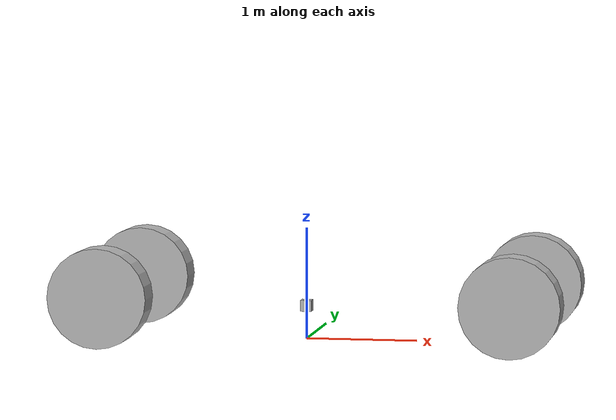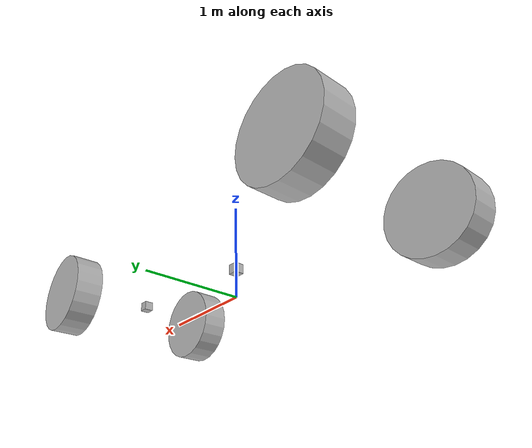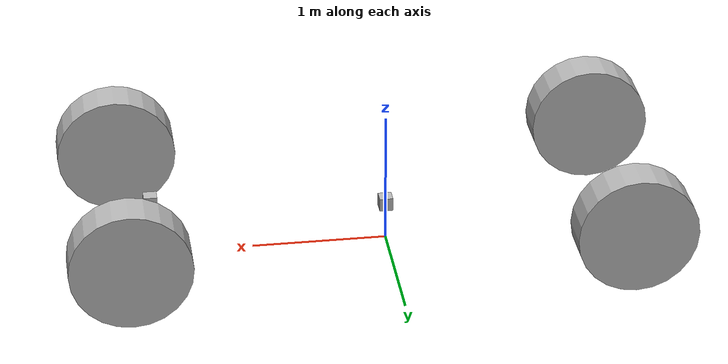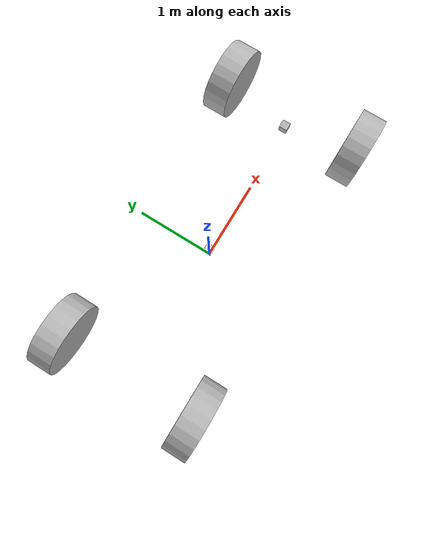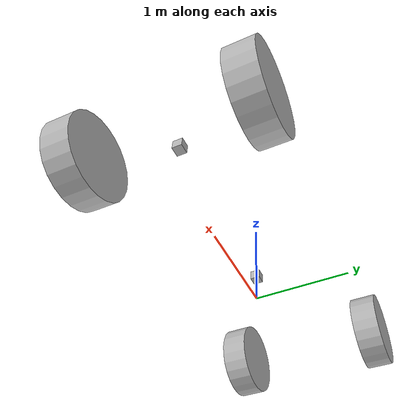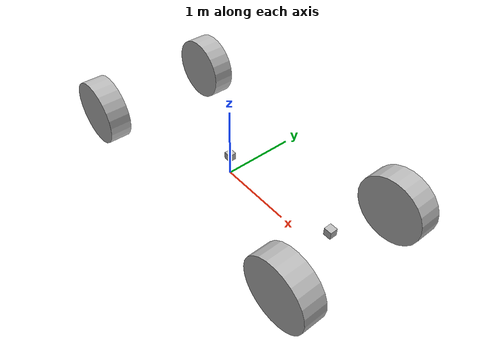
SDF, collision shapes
<!-- rosrun gazebo_ros spawn_model -model F-150 -sdf -file /home/bigb/gazebo_f150_ws/src/gazebo_f150/models/F150/model.sdf -->

<?xml version="1.0" ?>
<sdf version="1.5">
  <model name="box">
    <pose>0 0 0 0 0 0</pose>
    <static>false</static>

    <link name="chassis">
    <pose>0 0 0 0 0 0</pose>
      <inertial>
        <inertia>
          <ixx>1000</ixx>
          <ixy>0</ixy>
          <ixz>0</ixz>
          <iyy>1000</iyy>
          <iyz>0</iyz>
          <izz>1000</izz>
        </inertia>
        <mass>1000</mass>
      </inertial>
      <collision name="base_link_collision">
        <pose>0 0 0.3 0 0 0</pose>
        <geometry>
          <box>
            <size>0.1 0.1 0.1</size>
          </box>
        </geometry>
      </collision>
      <visual name="base_link_visual">
        <geometry>
          <cylinder>
            <radius>0.1</radius>
            <length>1.0</length>
          </cylinder>
        </geometry>
      </visual>
    </link>

    <link name="steering_centerlink_link">
    <pose>1.75 0 0.445 0 0 0</pose>
      <inertial>
        <inertia>
          <ixx>0.1</ixx>
          <ixy>0</ixy>
          <ixz>0</ixz>
          <iyy>0.1</iyy>
          <iyz>0</iyz>
          <izz>0.1</izz>
        </inertia>
        <mass>0.1</mass>
      </inertial>
      <collision name="collision">
        <pose>0 0 0 0 0 0</pose>
        <geometry>
            <box>
              <size>0.1 0.1 0.1</size>
            </box>
        </geometry>
      </collision>
      <visual name="visual">
        <pose>0 0 0 1.57079632679 0 0</pose>
        <geometry>
          <cylinder>
            <radius>0.01</radius>
            <length>0.5</length>
          </cylinder>
        </geometry>
      </visual>
    </link>

    <joint name="centerlink2chassis_joint" type="prismatic">
      <parent>chassis</parent>
      <child>steering_centerlink_link</child>
      <pose>0 0 0 0 0 0</pose>
      <axis>
        <xyz>0 1 0</xyz>
      </axis>
    </joint>

    <!-- Start Front Right Wheel -->
        <link name="front_right_wheel">
        <pose>1.953 -0.8665 0.445 0 0 0</pose>
          <inertial>
            <inertia>
              <ixx>2</ixx>
              <ixy>0</ixy>
              <ixz>0</ixz>
              <iyy>3.46</iyy>
              <iyz>0</iyz>
              <izz>2</izz>
            </inertia>
            <mass>35.0</mass>
          </inertial>

          <collision name="front_right_wheel_collision">
          <pose>0 0 0 1.57079633 0 0</pose>
            <geometry>
              <cylinder>
                <radius>0.445</radius>
                <length>0.297</length>
              </cylinder>
            </geometry>
            <surface>
              <friction>
                <ode>
                  <mu>0.7</mu>
                  <mu2>0.7</mu2>
                </ode>
              </friction>
            </surface>
          </collision>

          <visual name="front_right_wheel_visual">
          <pose>0 0 0 0 0 0</pose>
            <geometry>
              <mesh>
                <uri>model://F150/meshes/wheel.dae</uri>
              </mesh>
            </geometry>
          </visual>
        </link>

    <link name="right_steering_arm_link">
    <pose>1.953 -0.8665 0.445 0 0 -0.23300146</pose> <!-- Front wheel position with rotation -->
      <inertial>
        <inertia>
          <ixx>0.1</ixx>
          <ixy>0</ixy>
          <ixz>0</ixz>
          <iyy>0.1</iyy>
          <iyz>0</iyz>
          <izz>0.1</izz>
        </inertia>
        <mass>0.1</mass>
      </inertial>
      <collision name="collision">
        <pose>0 0 0 0 0 0</pose>
        <geometry>
          <cylinder>
            <radius>0.005</radius>
            <length>0.01</length>
          </cylinder>
        </geometry>
      </collision>
      <visual name="visual">
        <pose>-0.125 0 0 0 1.57079632679 0</pose>
        <geometry>
          <cylinder>
            <radius>0.01</radius>
            <length>0.25</length>
          </cylinder>
        </geometry>
      </visual>
    </link>

    <link name="right_tierod_link">
    <pose>1.953 -0.8665 0.445 0 0 -0.23300146</pose> <!-- Front wheel position with rotation -->
      <inertial>
        <inertia>
          <ixx>0.1</ixx>
          <ixy>0</ixy>
          <ixz>0</ixz>
          <iyy>0.1</iyy>
          <iyz>0</iyz>
          <izz>0.1</izz>
        </inertia>
        <mass>0.1</mass>
      </inertial>
      <collision name="collision">
        <pose>0 0 0 0 0 0</pose>
        <geometry>
          <box>
            <size>0.1 0.1 0.1</size>
          </box>
        </geometry>
      </collision>
      <visual name="visual">
        <pose>-0.375 0 0 0 1.57079632679 0</pose>
        <geometry>
          <cylinder>
            <radius>0.01</radius>
            <length>0.25</length>
          </cylinder>
        </geometry>
      </visual>
    </link>

    <joint name="right_arm2wheel_joint" type="revolute">
      <parent>right_steering_arm_link</parent>
      <child>front_right_wheel</child>
      <pose>0 0 0 0 0 0</pose>
      <axis>
        <xyz>0 1 0</xyz>
      </axis>
    </joint>

    <joint name="right_arm2tierod_joint" type="ball">
      <parent>right_tierod_link</parent>
      <child>right_steering_arm_link</child>
      <pose>-0.25 0 0 0 0 0</pose>
    </joint>
    <joint name="right_wheel2chassis_joint" type="revolute">
      <parent>right_steering_arm_link</parent>
      <child>chassis</child>
      <pose>1.953 -0.8665 0.445 0 0 0</pose> <!-- Front wheel position -->
      <axis>
        <xyz>0 0 1</xyz>
      </axis>
    </joint>

    <!-- END right steering -->
    <!-- End Front Right Wheel -->

    <!-- Front Left Wheel -->
        <link name="front_left_wheel">
        <pose>1.953 0.8665 0.445 0 0 0</pose>
          <inertial>
            <inertia>
              <ixx>2</ixx>
              <ixy>0</ixy>
              <ixz>0</ixz>
              <iyy>3.46</iyy>
              <iyz>0</iyz>
              <izz>2</izz>
            </inertia>
            <mass>35.0</mass>
          </inertial>

          <collision name="front_left_wheel_collision">
          <pose>0 0 0 1.57079633 0 0</pose>
            <geometry>
              <cylinder>
                <radius>0.445</radius>
                <length>0.297</length>
              </cylinder>
            </geometry>
            <surface>
              <friction>
                <ode>
                  <mu>0.7</mu>
                  <mu2>0.7</mu2>
                </ode>
              </friction>
            </surface>
          </collision>

          <visual name="front_left_wheel_visual">
          <pose>0 0 0 0 0 3.1416</pose>
            <geometry>
              <mesh>
                <uri>model://F150/meshes/wheel.dae</uri>
              </mesh>
            </geometry>
          </visual>
        </link>

            <link name="left_steering_arm_link">
            <pose>1.953 0.8665 0.445 0 0 0.23300146</pose> <!-- Front wheel position with rotation -->
              <inertial>
                <inertia>
                  <ixx>0.1</ixx>
                  <ixy>0</ixy>
                  <ixz>0</ixz>
                  <iyy>0.1</iyy>
                  <iyz>0</iyz>
                  <izz>0.1</izz>
                </inertia>
                <mass>0.1</mass>
              </inertial>
              <collision name="collision">
                <pose>0 0 0 0 0 0</pose>
                <geometry>
                  <cylinder>
                    <radius>0.005</radius>
                    <length>0.01</length>
                  </cylinder>
                </geometry>
              </collision>
              <visual name="visual">
                <pose>-0.125 0 0 0 1.57079632679 0</pose>
                <geometry>
                  <cylinder>
                    <radius>0.01</radius>
                    <length>0.25</length>
                  </cylinder>
                </geometry>
              </visual>
            </link>

            <link name="left_tierod_link">
            <pose>1.953 0.8665 0.445 0 0 0.23300146</pose> <!-- Front wheel position with rotation -->
              <inertial>
                <inertia>
                  <ixx>0.1</ixx>
                  <ixy>0</ixy>
                  <ixz>0</ixz>
                  <iyy>0.1</iyy>
                  <iyz>0</iyz>
                  <izz>0.1</izz>
                </inertia>
                <mass>0.1</mass>
              </inertial>
              <collision name="collision">
                <pose>0 0 0 0 0 0</pose>
                <geometry>
                  <box>
                    <size>0.1 0.1 0.1</size>
                  </box>
                </geometry>
              </collision>
              <visual name="visual">
                <pose>-0.375 0 0 0 1.57079632679 0</pose>
                <geometry>
                  <cylinder>
                    <radius>0.01</radius>
                    <length>0.25</length>
                  </cylinder>
                </geometry>
              </visual>
            </link>

            <joint name="left_arm2wheel_joint" type="revolute">
              <parent>left_steering_arm_link</parent>
              <child>front_left_wheel</child>
              <pose>0 0 0 0 0 0</pose>
              <axis>
                <xyz>0 1 0</xyz>
              </axis>
            </joint>

            <joint name="left_arm2tierod_joint" type="ball">
              <parent>left_tierod_link</parent>
              <child>left_steering_arm_link</child>
              <pose>-0.25 0 0 0 0 0</pose>
            </joint>

            <joint name="left_tierod2centerlink_joint" type="ball">
              <parent>steering_centerlink_link</parent>
              <child>left_tierod_link</child>
              <pose>-0.5 0 0 0 0 0</pose>
            </joint>

            <joint name="left_wheel2chassis_joint" type="revolute">
              <parent>left_steering_arm_link</parent>
              <child>chassis</child>
              <pose>1.953 0.8665 0.445 0 0 0</pose> <!-- Front wheel position -->
              <axis>
                <xyz>0 0 1</xyz>
              </axis>
            </joint>
    <!-- End Front Left Wheel -->

    <!-- Start Rear Right Wheel -->
        <link name="rear_right_wheel">
        <pose>-1.698 -0.8665 0.445 0 0 0</pose>
          <inertial>
            <inertia>
              <ixx>2</ixx>
              <ixy>0</ixy>
              <ixz>0</ixz>
              <iyy>3.46</iyy>
              <iyz>0</iyz>
              <izz>2</izz>
            </inertia>
            <mass>35.0</mass>
          </inertial>

          <collision name="rear_right_wheel_collision">
          <pose>0 0 0 1.57079633 0 0</pose>
            <geometry>
              <cylinder>
                <radius>0.445</radius>
                <length>0.297</length>
              </cylinder>
            </geometry>
            <surface>
              <friction>
                <ode>
                  <mu>0.7</mu>
                  <mu2>0.7</mu2>
                </ode>
              </friction>
            </surface>
          </collision>

          <visual name="rear_right_wheel_visual">
          <pose>0 0 0 0 0 0</pose>
            <geometry>
              <mesh>
                <uri>model://F150/meshes/wheel.dae</uri>
              </mesh>
            </geometry>
          </visual>
        </link>

        <joint name="rear_right_wheel_joint" type="revolute">
          <parent>chassis</parent>
          <child>rear_right_wheel</child>
          <pose>0 0 0 0 0 0</pose>
          <axis>
            <xyz>0 1 0</xyz>
          </axis>
        </joint>
    <!-- End Rear Right Wheel -->

    <!-- Start Rear Left Wheel -->
        <link name="rear_left_wheel">
        <pose>-1.698 0.8665 0.445 0 0 0</pose>
          <inertial>
            <inertia>
              <ixx>2</ixx>
              <ixy>0</ixy>
              <ixz>0</ixz>
              <iyy>3.46</iyy>
              <iyz>0</iyz>
              <izz>2</izz>
            </inertia>
            <mass>35.0</mass>
          </inertial>

          <collision name="rear_left_wheel_collision">
          <pose>0 0 0 1.57079633 0 0</pose>
            <geometry>
              <cylinder>
                <radius>0.445</radius>
                <length>0.297</length>
              </cylinder>
            </geometry>
            <surface>
              <friction>
                <ode>
                  <mu>0.7</mu>
                  <mu2>0.7</mu2>
                </ode>
              </friction>
            </surface>
          </collision>

          <visual name="rear_left_wheel_visual">
          <pose>0 0 0 0 0 3.1416</pose>
            <geometry>
              <mesh>
                <uri>model://F150/meshes/wheel.dae</uri>
              </mesh>
            </geometry>
          </visual>
        </link>

        <joint name="rear_left_wheel_joint" type="revolute">
          <parent>chassis</parent>
          <child>rear_left_wheel</child>
          <pose>0 0 0 0 0 0</pose>
          <axis>
            <xyz>0 1 0</xyz>
          </axis>
        </joint>
    <!-- End Rear Left Wheel -->

</model>
</sdf>
